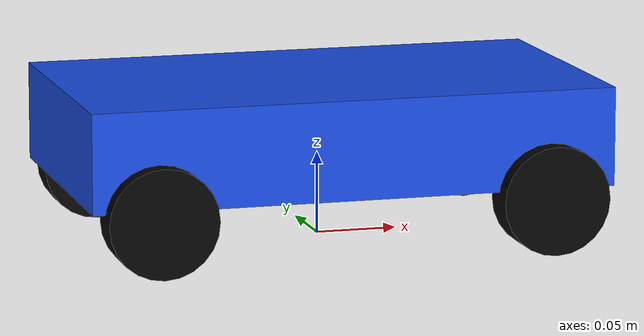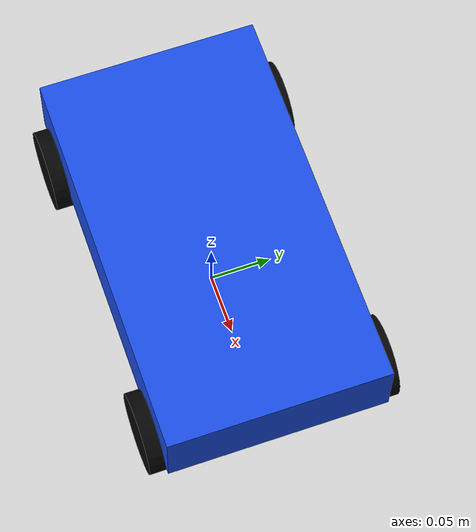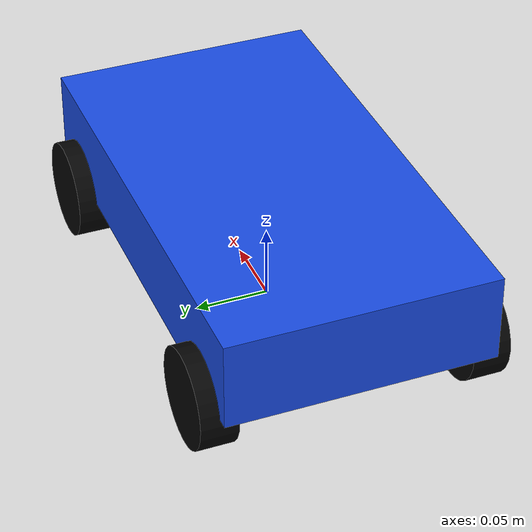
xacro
<?xml version="1.0"?>
<robot xmlns:xacro="http://www.ros.org/wiki/xacro">

  <xacro:property name="chassis_length" value="0.32"/>
  <xacro:property name="chassis_width"  value="0.18"/>
  <xacro:property name="chassis_height" value="0.06"/>

  <xacro:property name="wheel_radius" value="0.033"/>
  <xacro:property name="wheel_width"  value="0.025"/>

  <xacro:property name="front_x" value="0.12"/>
  <xacro:property name="rear_x"  value="-0.12"/>
  <xacro:property name="left_y"  value="0.09"/>
  <xacro:property name="right_y" value="-0.09"/>

  <xacro:property name="chassis_clearance" value="0.015"/>
  <xacro:property name="base_z" value="${wheel_radius + 0.035}"/>

  <material name="black"><color rgba="0.02 0.02 0.02 1.0"/></material>
  <material name="gray"><color rgba="0.4 0.4 0.4 1.0"/></material>
  <material name="blue"><color rgba="0.1 0.3 0.9 1.0"/></material>

  <link name="base_footprint"/>

  <joint name="base_footprint_to_base_link" type="fixed">
    <parent link="base_footprint"/>
    <child link="base_link"/>
    <origin xyz="0 0 ${base_z}" rpy="0 0 0"/>
  </joint>

  <link name="base_link">
    <visual>
      <origin xyz="0 0 0" rpy="0 0 0"/>
      <geometry><box size="${chassis_length} ${chassis_width} ${chassis_height}"/></geometry>
      <material name="blue"/>
    </visual>
    <collision>
      <origin xyz="0 0 0" rpy="0 0 0"/>
      <geometry><box size="${chassis_length} ${chassis_width} ${chassis_height}"/></geometry>
    </collision>
    <inertial>
      <mass value="1.5"/>
      <origin xyz="0 0 0"/>
      <inertia ixx="0.01" ixy="0.0" ixz="0.0" iyy="0.02" iyz="0.0" izz="0.02"/>
    </inertial>
  </link>

  <gazebo reference="base_link">
    <material>Gazebo/Blue</material>
  </gazebo>

  <xacro:macro name="wheel" params="name parent x y steerable">

    <xacro:if value="${steerable}">
      <link name="${name}_steer_link">
        <visual>
          <geometry><box size="0.02 0.02 0.02"/></geometry>
          <material name="gray"/>
        </visual>
        <collision>
          <geometry><box size="0.02 0.02 0.02"/></geometry>
        </collision>
        <inertial>
          <mass value="0.05"/> <origin xyz="0 0 0"/>
          <inertia ixx="0.00001" ixy="0.0" ixz="0.0" iyy="0.00001" iyz="0.0" izz="0.00001"/>
        </inertial>
      </link>

      <joint name="${name}_steer_joint" type="revolute">
        <parent link="${parent}"/>
        <child link="${name}_steer_link"/>
        <origin xyz="${x} ${y} -0.035" rpy="0 0 0"/>
        <axis xyz="0 0 1"/>
        <limit lower="-0.6" upper="0.6" effort="10.0" velocity="5.0"/>
      </joint>

      <link name="${name}_wheel_link">
        <visual>
          <origin xyz="0 0 0" rpy="1.5708 0 0"/>
          <geometry><cylinder radius="${wheel_radius}" length="${wheel_width}"/></geometry>
          <material name="black"/>
        </visual>
        <collision>
          <origin xyz="0 0 0" rpy="1.5708 0 0"/>
          <geometry><cylinder radius="${wheel_radius}" length="${wheel_width}"/></geometry>
        </collision>
        <inertial>
          <mass value="0.05"/>
          <origin xyz="0 0 0"/>
          <inertia ixx="0.00005" ixy="0.0" ixz="0.0" iyy="0.00005" iyz="0.0" izz="0.00005"/>
        </inertial>
      </link>

      <joint name="${name}_wheel_joint" type="continuous">
        <parent link="${name}_steer_link"/>
        <child link="${name}_wheel_link"/>
        <origin xyz="0 0 0" rpy="0 0 0"/>
        <axis xyz="0 1 0"/>
        <limit effort="5.0" velocity="50.0"/>
      </joint>
    </xacro:if>

    <xacro:unless value="${steerable}">
      <link name="${name}_wheel_link">
        <visual>
          <origin xyz="0 0 0" rpy="1.5708 0 0"/>
          <geometry><cylinder radius="${wheel_radius}" length="${wheel_width}"/></geometry>
          <material name="black"/>
        </visual>
        <collision>
          <origin xyz="0 0 0" rpy="1.5708 0 0"/>
          <geometry><cylinder radius="${wheel_radius}" length="${wheel_width}"/></geometry>
        </collision>
        <inertial>
          <mass value="0.05"/>
          <origin xyz="0 0 0"/>
          <inertia ixx="0.00005" ixy="0.0" ixz="0.0" iyy="0.00005" iyz="0.0" izz="0.00005"/>
        </inertial>
      </link>

      <joint name="${name}_wheel_joint" type="continuous">
        <parent link="${parent}"/>
        <child link="${name}_wheel_link"/>
        <origin xyz="${x} ${y} -0.035" rpy="0 0 0"/>
        <axis xyz="0 1 0"/>
        <limit effort="5.0" velocity="50.0"/>
      </joint>
    </xacro:unless>

    <gazebo reference="${name}_wheel_link">
      <material>Gazebo/DarkGrey</material>
      <mu1 value="1.5"/>
      <mu2 value="1.5"/>
      <kp value="1000000.0"/>
      <kd value="1.0"/>
    </gazebo>
  </xacro:macro>

  <xacro:wheel name="front_left"  parent="base_link" x="${front_x}" y="${left_y}"  steerable="true"/>
  <xacro:wheel name="front_right" parent="base_link" x="${front_x}" y="${right_y}" steerable="true"/>
  <xacro:wheel name="rear_left"   parent="base_link" x="${rear_x}"  y="${left_y}"  steerable="false"/>
  <xacro:wheel name="rear_right"  parent="base_link" x="${rear_x}"  y="${right_y}" steerable="false"/>

</robot>
